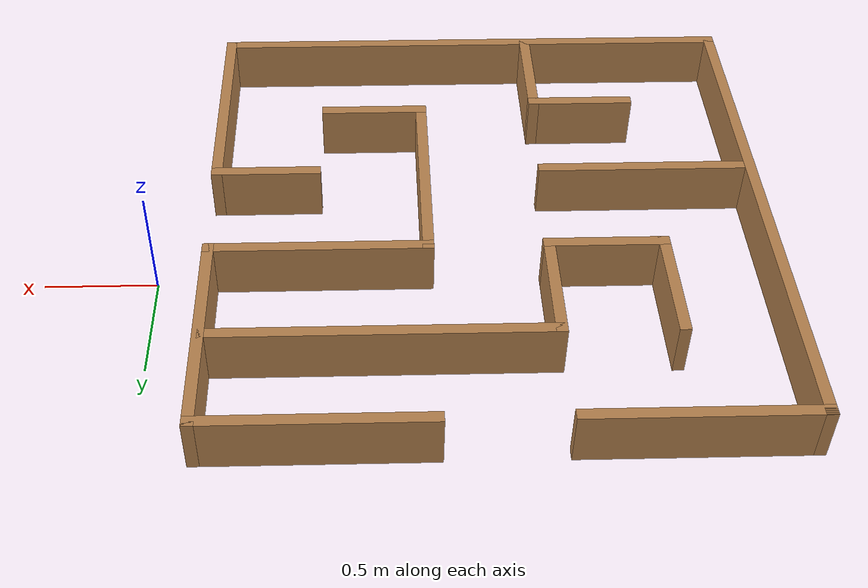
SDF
<?xml version='1.0'?>
<sdf version='1.7'>
  <model name='maze'>
    <pose>-1.36002 -0.255511 0 0 -0 0</pose>
    <link name='Wall_10'>
      <collision name='Wall_10_Collision'>
        <geometry>
          <box>
            <size>1.05 0.05 0.25</size>
          </box>
        </geometry>
        <pose>0 0 0.125 0 -0 0</pose>
      </collision>
      <visual name='Wall_10_Visual'>
        <pose>0 0 0.125 0 -0 0</pose>
        <geometry>
          <box>
            <size>1.05 0.05 0.25</size>
          </box>
        </geometry>
        <material>
          <script>
            <uri>file://media/materials/scripts/gazebo.material</uri>
            <name>Gazebo/Wood</name>
          </script>
          <ambient>1 1 1 1</ambient>
        </material>
        <meta>
          <layer>0</layer>
        </meta>
      </visual>
      <pose>1.11502 -0.727461 0 0 -0 1.5708</pose>
    </link>
    <link name='Wall_12'>
      <collision name='Wall_12_Collision'>
        <geometry>
          <box>
            <size>2.5 0.05 0.25</size>
          </box>
        </geometry>
        <pose>0 0 0.125 0 -0 0</pose>
      </collision>
      <visual name='Wall_12_Visual'>
        <pose>0 0 0.125 0 -0 0</pose>
        <geometry>
          <box>
            <size>2.5 0.05 0.25</size>
          </box>
        </geometry>
        <material>
          <script>
            <uri>file://media/materials/scripts/gazebo.material</uri>
            <name>Gazebo/Wood</name>
          </script>
          <ambient>1 1 1 1</ambient>
        </material>
        <meta>
          <layer>0</layer>
        </meta>
      </visual>
      <pose>-0.109976 -1.22497 0 0 -0 3.13956</pose>
    </link>
    <link name='Wall_18'>
      <collision name='Wall_18_Collision'>
        <geometry>
          <box>
            <size>2.5 0.05 0.25</size>
          </box>
        </geometry>
        <pose>0 0 0.125 0 -0 0</pose>
      </collision>
      <visual name='Wall_18_Visual'>
        <pose>0 0 0.125 0 -0 0</pose>
        <geometry>
          <box>
            <size>2.5 0.05 0.25</size>
          </box>
        </geometry>
        <material>
          <script>
            <uri>file://media/materials/scripts/gazebo.material</uri>
            <name>Gazebo/Wood</name>
          </script>
          <ambient>1 1 1 1</ambient>
        </material>
        <meta>
          <layer>0</layer>
        </meta>
      </visual>
      <pose>-1.33498 0.002511 0 0 -0 1.5708</pose>
    </link>
    <link name='Wall_20'>
      <collision name='Wall_20_Collision'>
        <geometry>
          <box>
            <size>1 0.05 0.25</size>
          </box>
        </geometry>
        <pose>0 0 0.125 0 -0 0</pose>
      </collision>
      <visual name='Wall_20_Visual'>
        <pose>0 0 0.125 0 -0 0</pose>
        <geometry>
          <box>
            <size>1 0.05 0.25</size>
          </box>
        </geometry>
        <material>
          <script>
            <uri>file://media/materials/scripts/gazebo.material</uri>
            <name>Gazebo/Wood</name>
          </script>
          <ambient>1 1 1 1</ambient>
        </material>
        <meta>
          <layer>0</layer>
        </meta>
      </visual>
      <pose>-0.859976 1.22751 0 0 -0 0</pose>
    </link>
    <link name='Wall_24'>
      <collision name='Wall_24_Collision'>
        <geometry>
          <box>
            <size>0.5 0.05 0.25</size>
          </box>
        </geometry>
        <pose>0 0 0.125 0 -0 0</pose>
      </collision>
      <visual name='Wall_24_Visual'>
        <pose>0 0 0.125 0 -0 0</pose>
        <geometry>
          <box>
            <size>0.5 0.05 0.25</size>
          </box>
        </geometry>
        <material>
          <script>
            <uri>file://media/materials/scripts/gazebo.material</uri>
            <name>Gazebo/Wood</name>
          </script>
          <ambient>1 1 1 1</ambient>
        </material>
        <meta>
          <layer>0</layer>
        </meta>
      </visual>
      <pose>0.890024 -0.227461 0 0 -0 3.14159</pose>
    </link>
    <link name='Wall_27'>
      <collision name='Wall_27_Collision'>
        <geometry>
          <box>
            <size>1 0.05 0.25</size>
          </box>
        </geometry>
        <pose>0 0 0.125 0 -0 0</pose>
      </collision>
      <visual name='Wall_27_Visual'>
        <pose>0 0 0.125 0 -0 0</pose>
        <geometry>
          <box>
            <size>1 0.05 0.25</size>
          </box>
        </geometry>
        <material>
          <script>
            <uri>file://media/materials/scripts/gazebo.material</uri>
            <name>Gazebo/Wood</name>
          </script>
          <ambient>1 1 1 1</ambient>
        </material>
        <meta>
          <layer>0</layer>
        </meta>
      </visual>
      <pose>0.640024 1.22751 0 0 -0 3.14159</pose>
    </link>
    <link name='Wall_29'>
      <collision name='Wall_29_Collision'>
        <geometry>
          <box>
            <size>1 0.05 0.25</size>
          </box>
        </geometry>
        <pose>0 0 0.125 0 -0 0</pose>
      </collision>
      <visual name='Wall_29_Visual'>
        <pose>0 0 0.125 0 -0 0</pose>
        <geometry>
          <box>
            <size>1 0.05 0.25</size>
          </box>
        </geometry>
        <material>
          <script>
            <uri>file://media/materials/scripts/gazebo.material</uri>
            <name>Gazebo/Wood</name>
          </script>
          <ambient>1 1 1 1</ambient>
        </material>
        <meta>
          <layer>0</layer>
        </meta>
      </visual>
      <pose>1.11502 0.752511 0 0 -0 -1.5708</pose>
    </link>
    <link name='Wall_30'>
      <collision name='Wall_30_Collision'>
        <geometry>
          <box>
            <size>1 0.05 0.25</size>
          </box>
        </geometry>
        <pose>0 0 0.125 0 -0 0</pose>
      </collision>
      <visual name='Wall_30_Visual'>
        <pose>0 0 0.125 0 -0 0</pose>
        <geometry>
          <box>
            <size>1 0.05 0.25</size>
          </box>
        </geometry>
        <material>
          <script>
            <uri>file://media/materials/scripts/gazebo.material</uri>
            <name>Gazebo/Wood</name>
          </script>
          <ambient>1 1 1 1</ambient>
        </material>
        <meta>
          <layer>0</layer>
        </meta>
      </visual>
      <pose>0.640024 0.277511 0 0 -0 3.14159</pose>
    </link>
    <link name='Wall_32'>
      <collision name='Wall_32_Collision'>
        <geometry>
          <box>
            <size>0.5 0.05 0.25</size>
          </box>
        </geometry>
        <pose>0 0 0.125 0 -0 0</pose>
      </collision>
      <visual name='Wall_32_Visual'>
        <pose>0 0 0.125 0 -0 0</pose>
        <geometry>
          <box>
            <size>0.5 0.05 0.25</size>
          </box>
        </geometry>
        <material>
          <script>
            <uri>file://media/materials/scripts/gazebo.material</uri>
            <name>Gazebo/Wood</name>
          </script>
          <ambient>1 1 1 1</ambient>
        </material>
        <meta>
          <layer>0</layer>
        </meta>
      </visual>
      <pose>0.390024 -0.672489 0 0 -0 0</pose>
    </link>
    <link name='Wall_35'>
      <collision name='Wall_35_Collision'>
        <geometry>
          <box>
            <size>0.55 0.05 0.25</size>
          </box>
        </geometry>
        <pose>0 0 0.125 0 -0 0</pose>
      </collision>
      <visual name='Wall_35_Visual'>
        <pose>0 0 0.125 0 -0 0</pose>
        <geometry>
          <box>
            <size>0.55 0.05 0.25</size>
          </box>
        </geometry>
        <material>
          <script>
            <uri>file://media/materials/scripts/gazebo.material</uri>
            <name>Gazebo/Wood</name>
          </script>
          <ambient>1 1 1 1</ambient>
        </material>
        <meta>
          <layer>0</layer>
        </meta>
      </visual>
      <pose>-0.384976 -0.972489 0 0 -0 1.5708</pose>
    </link>
    <link name='Wall_36'>
      <collision name='Wall_36_Collision'>
        <geometry>
          <box>
            <size>0.5 0.05 0.25</size>
          </box>
        </geometry>
        <pose>0 0 0.125 0 -0 0</pose>
      </collision>
      <visual name='Wall_36_Visual'>
        <pose>0 0 0.125 0 -0 0</pose>
        <geometry>
          <box>
            <size>0.5 0.05 0.25</size>
          </box>
        </geometry>
        <material>
          <script>
            <uri>file://media/materials/scripts/gazebo.material</uri>
            <name>Gazebo/Wood</name>
          </script>
          <ambient>1 1 1 1</ambient>
        </material>
        <meta>
          <layer>0</layer>
        </meta>
      </visual>
      <pose>-0.609976 -0.722489 0 0 -0 3.14159</pose>
    </link>
    <link name='Wall_38'>
      <collision name='Wall_38_Collision'>
        <geometry>
          <box>
            <size>1 0.05 0.25</size>
          </box>
        </geometry>
        <pose>0 0 0.125 0 -0 0</pose>
      </collision>
      <visual name='Wall_38_Visual'>
        <pose>0 0 0.125 0 -0 0</pose>
        <geometry>
          <box>
            <size>1 0.05 0.25</size>
          </box>
        </geometry>
        <material>
          <script>
            <uri>file://media/materials/scripts/gazebo.material</uri>
            <name>Gazebo/Wood</name>
          </script>
          <ambient>1 1 1 1</ambient>
        </material>
        <meta>
          <layer>0</layer>
        </meta>
      </visual>
      <pose>0.165024 -0.197489 0 0 -0 -1.5708</pose>
    </link>
    <link name='Wall_41'>
      <collision name='Wall_41_Collision'>
        <geometry>
          <box>
            <size>1 0.05 0.25</size>
          </box>
        </geometry>
        <pose>0 0 0.125 0 -0 0</pose>
      </collision>
      <visual name='Wall_41_Visual'>
        <pose>0 0 0.125 0 -0 0</pose>
        <geometry>
          <box>
            <size>1 0.05 0.25</size>
          </box>
        </geometry>
        <material>
          <script>
            <uri>file://media/materials/scripts/gazebo.material</uri>
            <name>Gazebo/Wood</name>
          </script>
          <ambient>1 1 1 1</ambient>
        </material>
        <meta>
          <layer>0</layer>
        </meta>
      </visual>
      <pose>-0.859976 -0.222489 0 0 -0 0</pose>
    </link>
    <link name='Wall_43'>
      <collision name='Wall_43_Collision'>
        <geometry>
          <box>
            <size>1.5 0.05 0.25</size>
          </box>
        </geometry>
        <pose>0 0 0.125 0 -0 0</pose>
      </collision>
      <visual name='Wall_43_Visual'>
        <pose>0 0 0.125 0 -0 0</pose>
        <geometry>
          <box>
            <size>1.5 0.05 0.25</size>
          </box>
        </geometry>
        <material>
          <script>
            <uri>file://media/materials/scripts/gazebo.material</uri>
            <name>Gazebo/Wood</name>
          </script>
          <ambient>1 1 1 1</ambient>
        </material>
        <meta>
          <layer>0</layer>
        </meta>
      </visual>
      <pose>0.368589 0.776924 0 0 -0 3.14159</pose>
    </link>
    <link name='Wall_44'>
      <collision name='Wall_44_Collision'>
        <geometry>
          <box>
            <size>0.55 0.05 0.25</size>
          </box>
        </geometry>
        <pose>0 0 0.125 0 -0 0</pose>
      </collision>
      <visual name='Wall_44_Visual'>
        <pose>0 0 0.125 0 -0 0</pose>
        <geometry>
          <box>
            <size>0.55 0.05 0.25</size>
          </box>
        </geometry>
        <material>
          <script>
            <uri>file://media/materials/scripts/gazebo.material</uri>
            <name>Gazebo/Wood</name>
          </script>
          <ambient>1 1 1 1</ambient>
        </material>
        <meta>
          <layer>0</layer>
        </meta>
      </visual>
      <pose>-0.356411 0.526924 0 0 -0 -1.5708</pose>
    </link>
    <link name='Wall_45'>
      <collision name='Wall_45_Collision'>
        <geometry>
          <box>
            <size>0.55 0.05 0.25</size>
          </box>
        </geometry>
        <pose>0 0 0.125 0 -0 0</pose>
      </collision>
      <visual name='Wall_45_Visual'>
        <pose>0 0 0.125 0 -0 0</pose>
        <geometry>
          <box>
            <size>0.55 0.05 0.25</size>
          </box>
        </geometry>
        <material>
          <script>
            <uri>file://media/materials/scripts/gazebo.material</uri>
            <name>Gazebo/Wood</name>
          </script>
          <ambient>1 1 1 1</ambient>
        </material>
        <meta>
          <layer>0</layer>
        </meta>
      </visual>
      <pose>-0.606411 0.276924 0 0 -0 3.14159</pose>
    </link>
    <link name='Wall_46'>
      <collision name='Wall_46_Collision'>
        <geometry>
          <box>
            <size>0.55 0.05 0.25</size>
          </box>
        </geometry>
        <pose>0 0 0.125 0 -0 0</pose>
      </collision>
      <visual name='Wall_46_Visual'>
        <pose>0 0 0.125 0 -0 0</pose>
        <geometry>
          <box>
            <size>0.55 0.05 0.25</size>
          </box>
        </geometry>
        <material>
          <script>
            <uri>file://media/materials/scripts/gazebo.material</uri>
            <name>Gazebo/Wood</name>
          </script>
          <ambient>1 1 1 1</ambient>
        </material>
        <meta>
          <layer>0</layer>
        </meta>
      </visual>
      <pose>-0.856411 0.526924 0 0 -0 1.5708</pose>
    </link>
    <static>1</static>
  </model>
</sdf>
